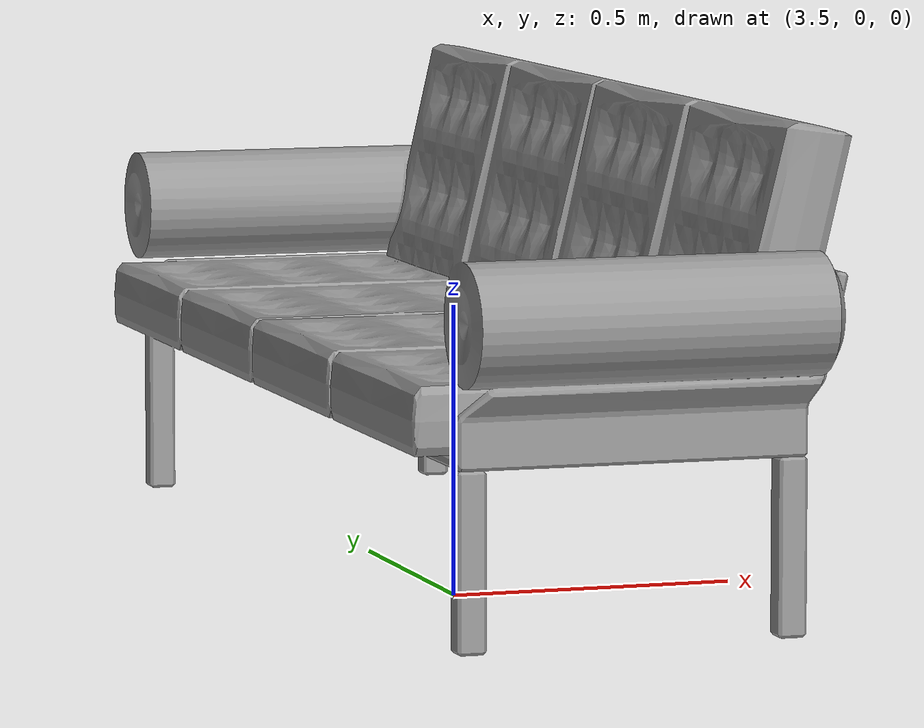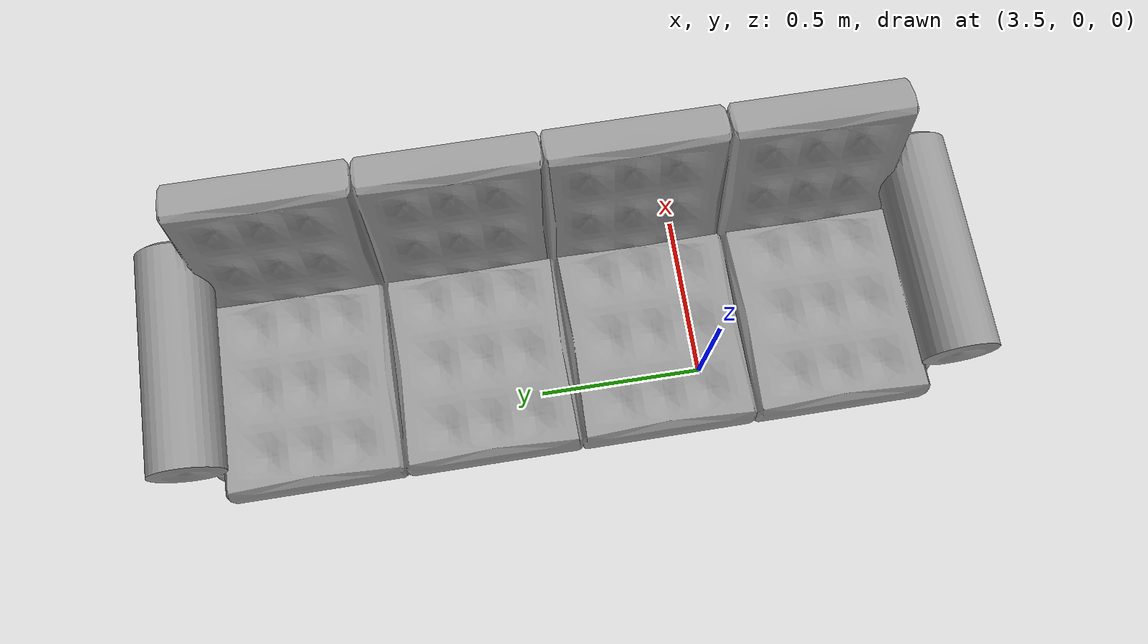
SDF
<?xml version='1.0'?>
<sdf version='1.6'>
  <model name='test_room_object_sofa'>
    <link name='link_test_room_object_sofa'>
      <pose frame=''>0 0 0 0 0 0</pose>
      <gravity>0</gravity>
      <self_collide>0</self_collide>
      <kinematic>0</kinematic>
      <visual name='visual'>
        <pose frame=''>0 0 0 0 0 0</pose>
        <geometry>
          <mesh>
            <uri>model://test_room_object_sofa/meshes/test_room_object_sofa.stl</uri>
            <scale>1 1 1</scale>
          </mesh>
        </geometry>
        <material>
          <lighting>1</lighting>
          <script>
            <uri>file://media/materials/scripts/gazebo.material</uri>
            <name>Gazebo/Grey</name>
          </script>
        </material>
        <cast_shadows>1</cast_shadows>
        <transparency>0</transparency>
      </visual>
      <collision name='collision'>
        <laser_retro>15.0</laser_retro>
        <max_contacts>10</max_contacts>
        <pose frame=''>0 0 0 0 0 0</pose>
        <geometry>
          <mesh>
            <uri>model://test_room_object_sofa/meshes/test_room_object_sofa.stl</uri>
          </mesh>
        </geometry>
      </collision>
    </link>
    <static>1</static>
  </model>
</sdf>
